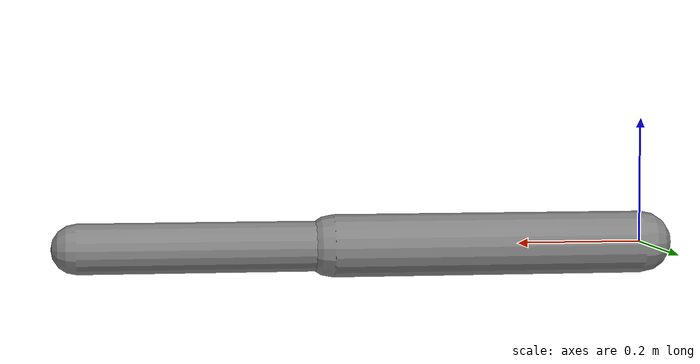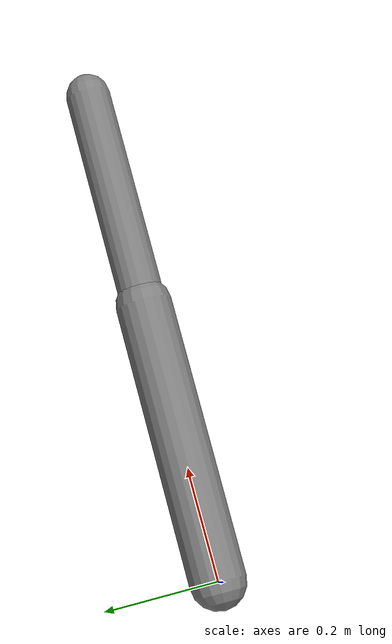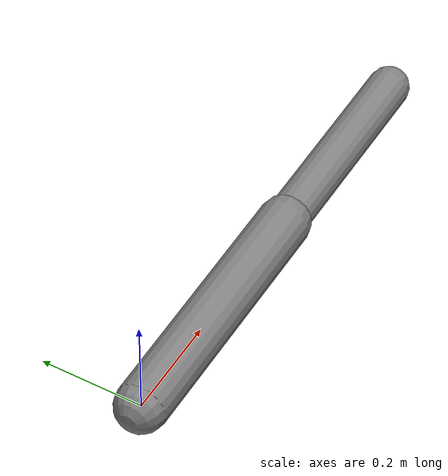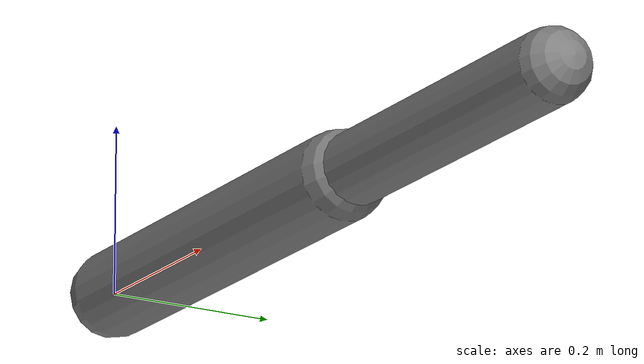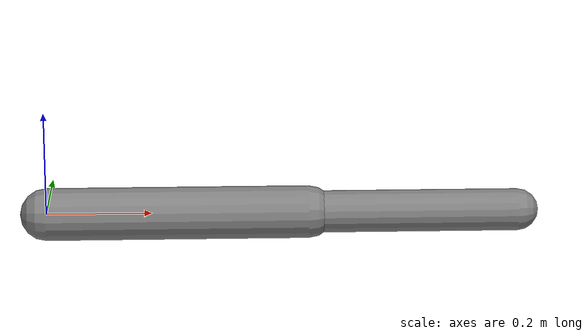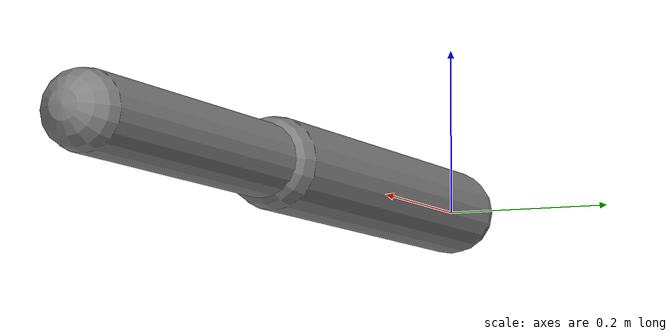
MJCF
<mujoco><option timestep="0.01"/>
<worldbody><body><joint name="a" type="hinge" axis="0 1 0" damping="0.1"/>
<geom type="capsule" fromto="0 0 0 0.5 0 0" size="0.05" mass="1"/>
<body pos="0.5 0 0"><joint type="hinge" axis="0 1 0" damping="0.2"/>
<geom type="capsule" fromto="0 0 0 0.4 0 0" size="0.04" mass="0.5"/></body></body></worldbody>
<actuator><motor joint="a"/></actuator></mujoco>
